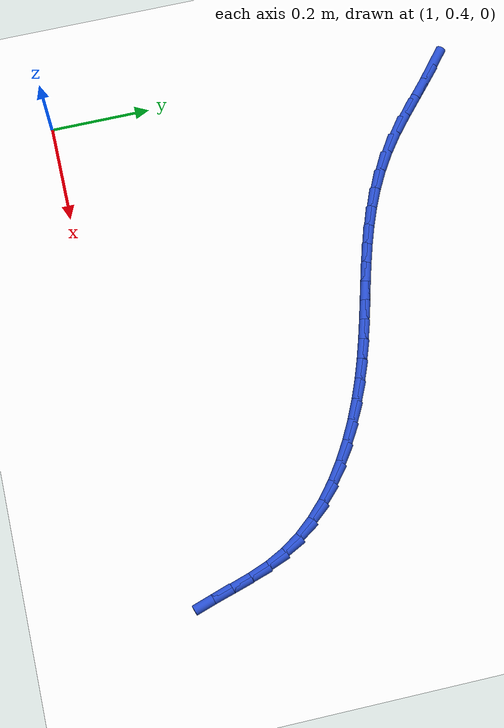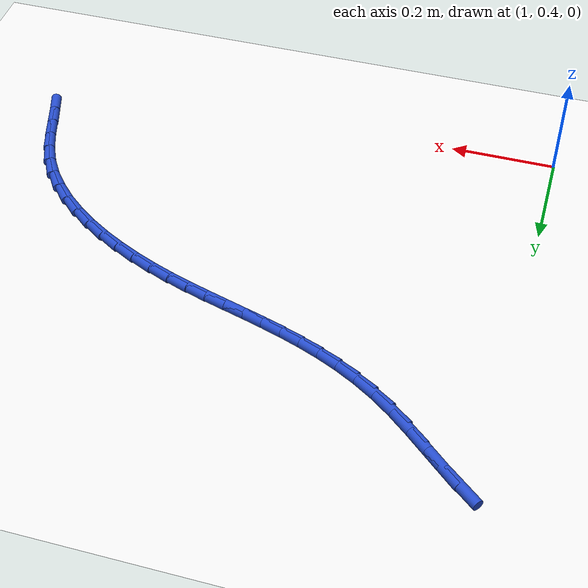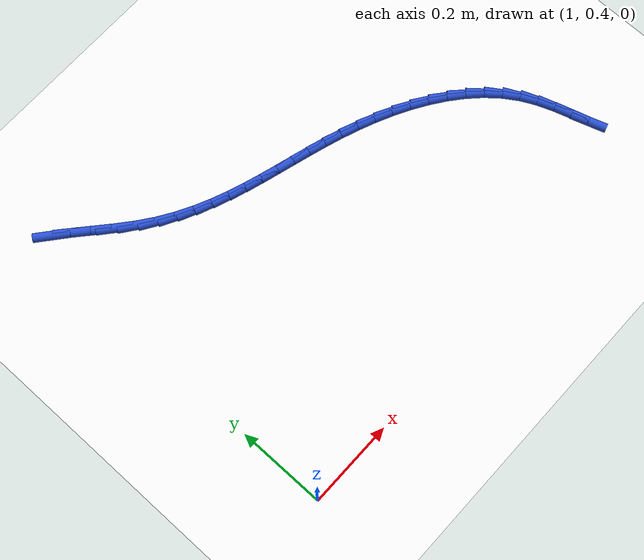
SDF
<sdf version="1.6">
 <world name="default">
  <model name="ground_plane">
   <static>1</static>
   <link name="link">
    <collision name="collision">
     <geometry><plane><normal>0 0 1</normal><size>100 100</size></plane></geometry>
     <surface><friction><ode><mu>100</mu><mu2>50</mu2></ode></friction></surface>
    </collision>
    <visual name="visual">
     <cast_shadows>0</cast_shadows>
     <geometry><plane><normal>0 0 1</normal><size>100 100</size></plane></geometry>
     <material>
      <script><uri>file://media/materials/scripts/gazebo.material</uri><name>Gazebo/WhiteGlow</name></script>
     </material>
    </visual>
   </link>
  </model>
  <model name="line">
   <link name="link_44">
    <pose>1.034404197055458 1.1883615096062574 0.01 0 1.57 -0.6874664682125644</pose>
    <collision name="collision">
     <geometry><cylinder><radius>0.01</radius><length>0.08</length></cylinder></geometry>
    </collision>
    <visual name="visual">
     <material>
      <script><name>Gazebo/Blue</name><uri>file://media/materials/scripts/gazebo.material</uri></script>
     </material>
     <geometry><cylinder><radius>0.01</radius><length>0.08</length></cylinder></geometry>
    </visual>
   </link>
   <link name="link_45">
    <pose>1.067305905675899 1.161346388411249 0.01 0 1.57 -0.720607841837003</pose>
    <collision name="collision">
     <geometry><cylinder><radius>0.01</radius><length>0.08</length></cylinder></geometry>
    </collision>
    <visual name="visual">
     <material>
      <script><name>Gazebo/Blue</name><uri>file://media/materials/scripts/gazebo.material</uri></script>
     </material>
     <geometry><cylinder><radius>0.01</radius><length>0.08</length></cylinder></geometry>
    </visual>
   </link>
   <link name="link_46">
    <pose>1.1009231175149905 1.1318256390121242 0.01 0 1.57 -0.7216454191460531</pose>
    <collision name="collision">
     <geometry><cylinder><radius>0.01</radius><length>0.08</length></cylinder></geometry>
    </collision>
    <visual name="visual">
     <material>
      <script><name>Gazebo/Blue</name><uri>file://media/materials/scripts/gazebo.material</uri></script>
     </material>
     <geometry><cylinder><radius>0.01</radius><length>0.08</length></cylinder></geometry>
    </visual>
   </link>
   <link name="link_47">
    <pose>1.135166125151419 1.1016923653660164 0.01 0 1.57 -0.6925301969337198</pose>
    <collision name="collision">
     <geometry><cylinder><radius>0.01</radius><length>0.08</length></cylinder></geometry>
    </collision>
    <visual name="visual">
     <material>
      <script><name>Gazebo/Blue</name><uri>file://media/materials/scripts/gazebo.material</uri></script>
     </material>
     <geometry><cylinder><radius>0.01</radius><length>0.08</length></cylinder></geometry>
    </visual>
   </link>
   <link name="link_48">
    <pose>1.1699452211638692 1.0728396714300574 0.01 0 1.57 -0.632211776984574</pose>
    <collision name="collision">
     <geometry><cylinder><radius>0.01</radius><length>0.08</length></cylinder></geometry>
    </collision>
    <visual name="visual">
     <material>
      <script><name>Gazebo/Blue</name><uri>file://media/materials/scripts/gazebo.material</uri></script>
     </material>
     <geometry><cylinder><radius>0.01</radius><length>0.08</length></cylinder></geometry>
    </visual>
   </link>
   <link name="link_49">
    <pose>1.2051741840909804 1.047034181916328 0.01 0 1.57 -0.5604166884995994</pose>
    <collision name="collision">
     <geometry><cylinder><radius>0.01</radius><length>0.08</length></cylinder></geometry>
    </collision>
    <visual name="visual">
     <material>
      <script><name>Gazebo/Blue</name><uri>file://media/materials/scripts/gazebo.material</uri></script>
     </material>
     <geometry><cylinder><radius>0.01</radius><length>0.08</length></cylinder></geometry>
    </visual>
   </link>
   <link name="link_50">
    <pose>1.2408044807922554 1.0246750960825213 0.01 0 1.57 -0.4931067878614294</pose>
    <collision name="collision">
     <geometry><cylinder><radius>0.01</radius><length>0.08</length></cylinder></geometry>
    </collision>
    <visual name="visual">
     <material>
      <script><name>Gazebo/Blue</name><uri>file://media/materials/scripts/gazebo.material</uri></script>
     </material>
     <geometry><cylinder><radius>0.01</radius><length>0.08</length></cylinder></geometry>
    </visual>
   </link>
   <link name="link_51">
    <pose>1.2768106109563269 1.0053259252035789 0.01 0 1.57 -0.4325815828369847</pose>
    <collision name="collision">
     <geometry><cylinder><radius>0.01</radius><length>0.08</length></cylinder></geometry>
    </collision>
    <visual name="visual">
     <material>
      <script><name>Gazebo/Blue</name><uri>file://media/materials/scripts/gazebo.material</uri></script>
     </material>
     <geometry><cylinder><radius>0.01</radius><length>0.08</length></cylinder></geometry>
    </visual>
   </link>
   <link name="link_52">
    <pose>1.3131674044491928 0.9885382009033757 0.01 0 1.57 -0.38054941655955254</pose>
    <collision name="collision">
     <geometry><cylinder><radius>0.01</radius><length>0.08</length></cylinder></geometry>
    </collision>
    <visual name="visual">
     <material>
      <script><name>Gazebo/Blue</name><uri>file://media/materials/scripts/gazebo.material</uri></script>
     </material>
     <geometry><cylinder><radius>0.01</radius><length>0.08</length></cylinder></geometry>
    </visual>
   </link>
   <link name="link_53">
    <pose>1.3498496911368496 0.9738634548057874 0.01 0 1.57 -0.33827156667805686</pose>
    <collision name="collision">
     <geometry><cylinder><radius>0.01</radius><length>0.08</length></cylinder></geometry>
    </collision>
    <visual name="visual">
     <material>
      <script><name>Gazebo/Blue</name><uri>file://media/materials/scripts/gazebo.material</uri></script>
     </material>
     <geometry><cylinder><radius>0.01</radius><length>0.08</length></cylinder></geometry>
    </visual>
   </link>
   <link name="link_54">
    <pose>1.3868323008852965 0.9608532185346893 0.01 0 1.57 -0.30657638199899073</pose>
    <collision name="collision">
     <geometry><cylinder><radius>0.01</radius><length>0.08</length></cylinder></geometry>
    </collision>
    <visual name="visual">
     <material>
      <script><name>Gazebo/Blue</name><uri>file://media/materials/scripts/gazebo.material</uri></script>
     </material>
     <geometry><cylinder><radius>0.01</radius><length>0.08</length></cylinder></geometry>
    </visual>
   </link>
   <link name="link_55">
    <pose>1.4240900635605307 0.9490590237139565 0.01 0 1.57 -0.2859270738921094</pose>
    <collision name="collision">
     <geometry><cylinder><radius>0.01</radius><length>0.08</length></cylinder></geometry>
    </collision>
    <visual name="visual">
     <material>
      <script><name>Gazebo/Blue</name><uri>file://media/materials/scripts/gazebo.material</uri></script>
     </material>
     <geometry><cylinder><radius>0.01</radius><length>0.08</length></cylinder></geometry>
    </visual>
   </link>
   <link name="link_56">
    <pose>1.4615978090285489 0.9380324019674643 0.01 0 1.57 -0.27650484536732267</pose>
    <collision name="collision">
     <geometry><cylinder><radius>0.01</radius><length>0.08</length></cylinder></geometry>
    </collision>
    <visual name="visual">
     <material>
      <script><name>Gazebo/Blue</name><uri>file://media/materials/scripts/gazebo.material</uri></script>
     </material>
     <geometry><cylinder><radius>0.01</radius><length>0.08</length></cylinder></geometry>
    </visual>
   </link>
   <link name="link_57">
    <pose>1.4993303671553493 0.9273248849190877 0.01 0 1.57 -0.27827794508948317</pose>
    <collision name="collision">
     <geometry><cylinder><radius>0.01</radius><length>0.08</length></cylinder></geometry>
    </collision>
    <visual name="visual">
     <material>
      <script><name>Gazebo/Blue</name><uri>file://media/materials/scripts/gazebo.material</uri></script>
     </material>
     <geometry><cylinder><radius>0.01</radius><length>0.08</length></cylinder></geometry>
    </visual>
   </link>
   <link name="link_58">
    <pose>1.53726256780693 0.9164880041927018 0.01 0 1.57 -0.29104050074492127</pose>
    <collision name="collision">
     <geometry><cylinder><radius>0.01</radius><length>0.08</length></cylinder></geometry>
    </collision>
    <visual name="visual">
     <material>
      <script><name>Gazebo/Blue</name><uri>file://media/materials/scripts/gazebo.material</uri></script>
     </material>
     <geometry><cylinder><radius>0.01</radius><length>0.08</length></cylinder></geometry>
    </visual>
   </link>
   <link name="link_59">
    <pose>1.5753692408492876 0.9050732914121824 0.01 0 1.57 -0.3144168013787371</pose>
    <collision name="collision">
     <geometry><cylinder><radius>0.01</radius><length>0.08</length></cylinder></geometry>
    </collision>
    <visual name="visual">
     <material>
      <script><name>Gazebo/Blue</name><uri>file://media/materials/scripts/gazebo.material</uri></script>
     </material>
     <geometry><cylinder><radius>0.01</radius><length>0.08</length></cylinder></geometry>
    </visual>
   </link>
   <link name="link_60">
    <pose>1.6136252161484208 0.8926322782014043 0.01 0 1.57 -0.34783279336843115</pose>
    <collision name="collision">
     <geometry><cylinder><radius>0.01</radius><length>0.08</length></cylinder></geometry>
    </collision>
    <visual name="visual">
     <material>
      <script><name>Gazebo/Blue</name><uri>file://media/materials/scripts/gazebo.material</uri></script>
     </material>
     <geometry><cylinder><radius>0.01</radius><length>0.08</length></cylinder></geometry>
    </visual>
   </link>
   <link name="link_61">
    <pose>1.652005066051896 0.8787167250572064 0.01 0 1.57 -0.3892854697288861</pose>
    <collision name="collision">
     <geometry><cylinder><radius>0.01</radius><length>0.08</length></cylinder></geometry>
    </collision>
    <visual name="visual">
     <material>
      <script><name>Gazebo/Blue</name><uri>file://media/materials/scripts/gazebo.material</uri></script>
     </material>
     <geometry><cylinder><radius>0.01</radius><length>0.08</length></cylinder></geometry>
    </visual>
   </link>
   <link name="link_62">
    <pose>1.6903710020794993 0.8629782546714759 0.01 0 1.57 -0.4356523402527048</pose>
    <collision name="collision">
     <geometry><cylinder><radius>0.01</radius><length>0.08</length></cylinder></geometry>
    </collision>
    <visual name="visual">
     <material>
      <script><name>Gazebo/Blue</name><uri>file://media/materials/scripts/gazebo.material</uri></script>
     </material>
     <geometry><cylinder><radius>0.01</radius><length>0.08</length></cylinder></geometry>
    </visual>
   </link>
   <link name="link_63">
    <pose>1.7282974854426936 0.8453242316879979 0.01 0 1.57 -0.4874287644072484</pose>
    <collision name="collision">
     <geometry><cylinder><radius>0.01</radius><length>0.08</length></cylinder></geometry>
    </collision>
    <visual name="visual">
     <material>
      <script><name>Gazebo/Blue</name><uri>file://media/materials/scripts/gazebo.material</uri></script>
     </material>
     <geometry><cylinder><radius>0.01</radius><length>0.08</length></cylinder></geometry>
    </visual>
   </link>
   <link name="link_64">
    <pose>1.765313564805129 0.8257023817624609 0.01 0 1.57 -0.5457900237490081</pose>
    <collision name="collision">
     <geometry><cylinder><radius>0.01</radius><length>0.08</length></cylinder></geometry>
    </collision>
    <visual name="visual">
     <material>
      <script><name>Gazebo/Blue</name><uri>file://media/materials/scripts/gazebo.material</uri></script>
     </material>
     <geometry><cylinder><radius>0.01</radius><length>0.08</length></cylinder></geometry>
    </visual>
   </link>
   <link name="link_65">
    <pose>1.800948288830455 0.8040604305505514 0.01 0 1.57 -0.6120485412495208</pose>
    <collision name="collision">
     <geometry><cylinder><radius>0.01</radius><length>0.08</length></cylinder></geometry>
    </collision>
    <visual name="visual">
     <material>
      <script><name>Gazebo/Blue</name><uri>file://media/materials/scripts/gazebo.material</uri></script>
     </material>
     <geometry><cylinder><radius>0.01</radius><length>0.08</length></cylinder></geometry>
    </visual>
   </link>
   <link name="link_66">
    <pose>1.834730706182324 0.7803461037079577 0.01 0 1.57 -0.6876242683851528</pose>
    <collision name="collision">
     <geometry><cylinder><radius>0.01</radius><length>0.08</length></cylinder></geometry>
    </collision>
    <visual name="visual">
     <material>
      <script><name>Gazebo/Blue</name><uri>file://media/materials/scripts/gazebo.material</uri></script>
     </material>
     <geometry><cylinder><radius>0.01</radius><length>0.08</length></cylinder></geometry>
    </visual>
   </link>
   <link name="link_67">
    <pose>1.8661898655243836 0.7545071268903666 0.01 0 1.57 -0.7739477267924381</pose>
    <collision name="collision">
     <geometry><cylinder><radius>0.01</radius><length>0.08</length></cylinder></geometry>
    </collision>
    <visual name="visual">
     <material>
      <script><name>Gazebo/Blue</name><uri>file://media/materials/scripts/gazebo.material</uri></script>
     </material>
     <geometry><cylinder><radius>0.01</radius><length>0.08</length></cylinder></geometry>
    </visual>
   </link>
   <link name="link_68">
    <pose>1.8948548155202856 0.7264912257534659 0.01 0 1.57 -0.8722546565903321</pose>
    <collision name="collision">
     <geometry><cylinder><radius>0.01</radius><length>0.08</length></cylinder></geometry>
    </collision>
    <visual name="visual">
     <material>
      <script><name>Gazebo/Blue</name><uri>file://media/materials/scripts/gazebo.material</uri></script>
     </material>
     <geometry><cylinder><radius>0.01</radius><length>0.08</length></cylinder></geometry>
    </visual>
   </link>
   <link name="link_69">
    <pose>1.9202546048336795 0.6962461259529424 0.01 0 1.57 -0.9832345366710735</pose>
    <collision name="collision">
     <geometry><cylinder><radius>0.01</radius><length>0.08</length></cylinder></geometry>
    </collision>
    <visual name="visual">
     <material>
      <script><name>Gazebo/Blue</name><uri>file://media/materials/scripts/gazebo.material</uri></script>
     </material>
     <geometry><cylinder><radius>0.01</radius><length>0.08</length></cylinder></geometry>
    </visual>
   </link>
   <link name="link_70">
    <pose>1.9419182821282153 0.6637195531444845 0.01 0 1.57 -1.1047435366977185</pose>
    <collision name="collision">
     <geometry><cylinder><radius>0.01</radius><length>0.08</length></cylinder></geometry>
    </collision>
    <visual name="visual">
     <material>
      <script><name>Gazebo/Blue</name><uri>file://media/materials/scripts/gazebo.material</uri></script>
     </material>
     <geometry><cylinder><radius>0.01</radius><length>0.08</length></cylinder></geometry>
    </visual>
   </link>
   <link name="link_71">
    <pose>1.9594406856879956 0.6288844603962578 0.01 0 1.57 -1.2064260869912289</pose>
    <collision name="collision">
     <geometry><cylinder><radius>0.01</radius><length>0.08</length></cylinder></geometry>
    </collision>
    <visual name="visual">
     <material>
      <script><name>Gazebo/Blue</name><uri>file://media/materials/scripts/gazebo.material</uri></script>
     </material>
     <geometry><cylinder><radius>0.01</radius><length>0.08</length></cylinder></geometry>
    </visual>
   </link>
   <link name="link_72">
    <pose>1.973464366242756 0.5921155522053666 0.01 0 1.57 -1.2647775251027833</pose>
    <collision name="collision">
     <geometry><cylinder><radius>0.01</radius><length>0.08</length></cylinder></geometry>
    </collision>
    <visual name="visual">
     <material>
      <script><name>Gazebo/Blue</name><uri>file://media/materials/scripts/gazebo.material</uri></script>
     </material>
     <geometry><cylinder><radius>0.01</radius><length>0.08</length></cylinder></geometry>
    </visual>
   </link>
   <link name="link_73">
    <pose>1.9854720607530552 0.5541097073641721 0.01 0 1.57 -1.28083896134114</pose>
    <collision name="collision">
     <geometry><cylinder><radius>0.01</radius><length>0.08</length></cylinder></geometry>
    </collision>
    <visual name="visual">
     <material>
      <script><name>Gazebo/Blue</name><uri>file://media/materials/scripts/gazebo.material</uri></script>
     </material>
     <geometry><cylinder><radius>0.01</radius><length>0.08</length></cylinder></geometry>
    </visual>
   </link>
   <link name="link_74">
    <pose>1.996970155548379 0.5155728731530541 0.01 0 1.57 -1.255921573763036</pose>
    <collision name="collision">
     <geometry><cylinder><radius>0.01</radius><length>0.08</length></cylinder></geometry>
    </collision>
    <visual name="visual">
     <material>
      <script><name>Gazebo/Blue</name><uri>file://media/materials/scripts/gazebo.material</uri></script>
     </material>
     <geometry><cylinder><radius>0.01</radius><length>0.08</length></cylinder></geometry>
    </visual>
   </link>
  </model>
 </world>
</sdf>
